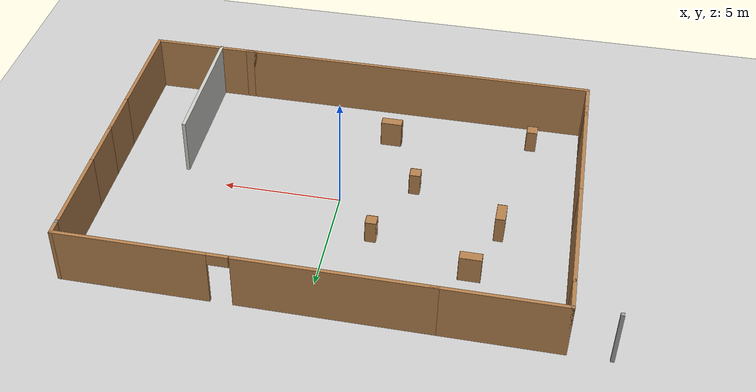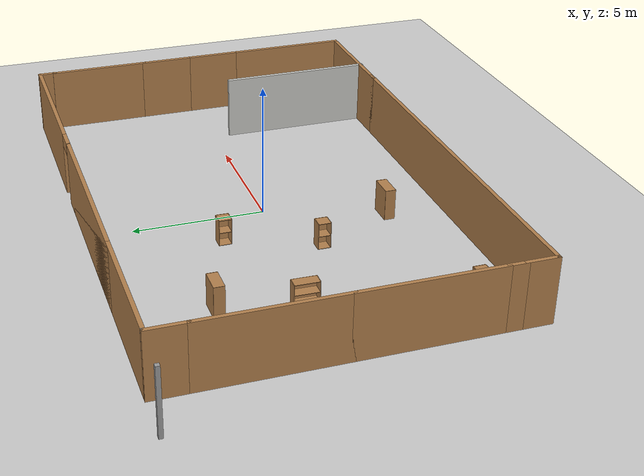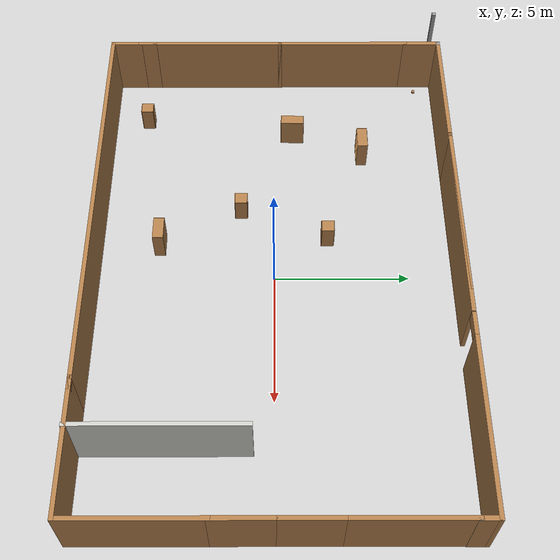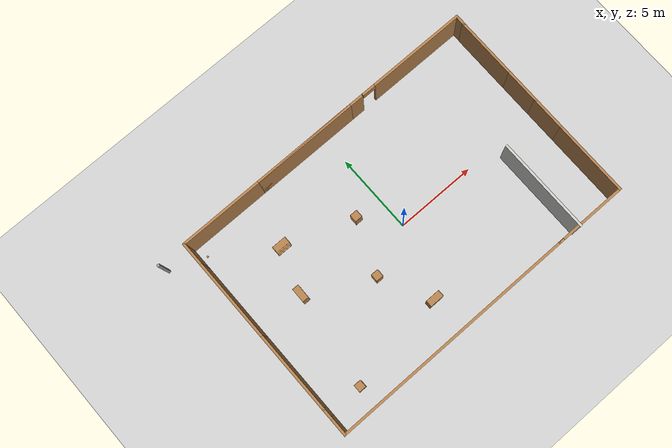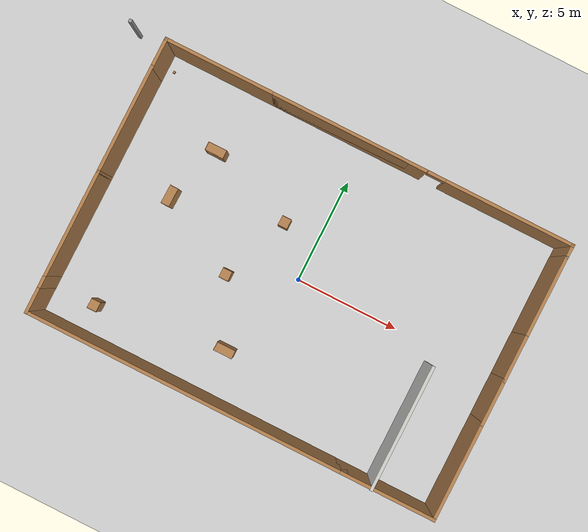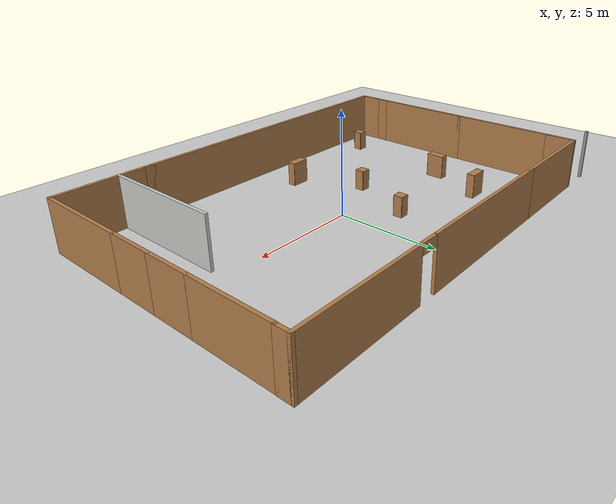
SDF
<sdf version="1.7">
 <world name="default">
  <model name="ground_plane">
   <static>1</static>
   <link name="link">
    <collision name="collision">
     <geometry><plane><normal>0 0 1</normal><size>100 100</size></plane></geometry>
     <surface><friction><ode><mu>100</mu><mu2>50</mu2></ode></friction></surface>
    </collision>
    <visual name="visual">
     <cast_shadows>0</cast_shadows>
     <geometry><plane><normal>0 0 1</normal><size>100 100</size></plane></geometry>
     <material>
      <script><uri>file://media/materials/scripts/gazebo.material</uri><name>Gazebo/Grey</name></script>
     </material>
    </visual>
   </link>
  </model>
  <model name="new1">
   <pose>-0.837793 0.046142 0 0 -0 0</pose>
   <link name="Wall_0">
    <collision name="Wall_0_Collision">
     <geometry><box><size>5.25 0.15 2.5</size></box></geometry>
     <pose>0 0 1.25 0 -0 0</pose>
    </collision>
    <visual name="Wall_0_Visual">
     <pose>0 0 1.25 0 -0 0</pose>
     <geometry><box><size>5.25 0.15 2.5</size></box></geometry>
     <material>
      <script><uri>file://media/materials/scripts/gazebo.material</uri><name>Gazebo/Wood</name></script>
      <ambient>1 1 1 1</ambient>
     </material>
     <meta><layer>0</layer></meta>
    </visual>
    <pose>-8.985 -2.355 0 0 -0 -1.5708</pose>
   </link>
   <link name="Wall_12">
    <collision name="Wall_12_Collision">
     <geometry><box><size>4.75 0.15 2.5</size></box></geometry>
     <pose>0 0 1.25 0 -0 0</pose>
    </collision>
    <visual name="Wall_12_Visual">
     <pose>0 0 1.25 0 -0 0</pose>
     <geometry><box><size>4.75 0.15 2.5</size></box></geometry>
     <material>
      <script><uri>file://media/materials/scripts/gazebo.material</uri><name>Gazebo/Wood</name></script>
      <ambient>1 1 1 1</ambient>
     </material>
     <meta><layer>0</layer></meta>
    </visual>
    <pose>10.715 -4.305 0 0 -0 1.5708</pose>
   </link>
   <link name="Wall_14">
    <collision name="Wall_14_Collision">
     <geometry><box><size>2.25 0.15 2.5</size></box></geometry>
     <pose>0 0 1.25 0 -0 0</pose>
    </collision>
    <visual name="Wall_14_Visual">
     <pose>0 0 1.25 0 -0 0</pose>
     <geometry><box><size>2.25 0.15 2.5</size></box></geometry>
     <material>
      <script><uri>file://media/materials/scripts/gazebo.material</uri><name>Gazebo/Wood</name></script>
      <ambient>1 1 1 1</ambient>
     </material>
     <meta><layer>0</layer></meta>
    </visual>
    <pose>10.715 -0.955 0 0 -0 1.5708</pose>
   </link>
   <link name="Wall_16">
    <collision name="Wall_16_Collision">
     <geometry><box><size>2.25 0.15 2.5</size></box></geometry>
     <pose>0 0 1.25 0 -0 0</pose>
    </collision>
    <visual name="Wall_16_Visual">
     <pose>0 0 1.25 0 -0 0</pose>
     <geometry><box><size>2.25 0.15 2.5</size></box></geometry>
     <material>
      <script><uri>file://media/materials/scripts/gazebo.material</uri><name>Gazebo/Wood</name></script>
      <ambient>1 1 1 1</ambient>
     </material>
     <meta><layer>0</layer></meta>
    </visual>
    <pose>10.715 1.145 0 0 -0 1.5708</pose>
   </link>
   <link name="Wall_19">
    <collision name="Wall_19_Collision">
     <geometry><box><size>4 0.15 2.5</size></box></geometry>
     <pose>0 0 1.25 0 -0 0</pose>
    </collision>
    <visual name="Wall_19_Visual">
     <pose>0 0 1.25 0 -0 0</pose>
     <geometry><box><size>4 0.15 2.5</size></box></geometry>
     <material>
      <script><uri>file://media/materials/scripts/gazebo.material</uri><name>Gazebo/Wood</name></script>
      <ambient>1 1 1 1</ambient>
     </material>
     <meta><layer>0</layer></meta>
    </visual>
    <pose>10.715 4.12 0 0 -0 1.5708</pose>
   </link>
   <link name="Wall_2">
    <collision name="Wall_2_Collision">
     <geometry><box><size>0.75 0.15 2.5</size></box></geometry>
     <pose>0 0 1.25 0 -0 0</pose>
    </collision>
    <visual name="Wall_2_Visual">
     <pose>0 0 1.25 0 -0 0</pose>
     <geometry><box><size>0.75 0.15 2.5</size></box></geometry>
     <material>
      <script><uri>file://media/materials/scripts/gazebo.material</uri><name>Gazebo/Wood</name></script>
      <ambient>1 1 1 1</ambient>
     </material>
     <meta><layer>0</layer></meta>
    </visual>
    <pose>-8.985 -5.205 0 0 -0 -1.5708</pose>
   </link>
   <link name="Wall_20">
    <collision name="Wall_20_Collision">
     <geometry><box><size>0.16 0.15 2.5</size></box></geometry>
     <pose>0 0 1.25 0 -0 0</pose>
    </collision>
    <visual name="Wall_20_Visual">
     <pose>0 0 1.25 0 -0 0</pose>
     <geometry><box><size>0.16 0.15 2.5</size></box></geometry>
     <material>
      <script><uri>file://media/materials/scripts/gazebo.material</uri><name>Gazebo/Grey</name></script>
      <ambient>1 1 1 1</ambient>
     </material>
     <meta><layer>0</layer></meta>
    </visual>
    <pose>10.72 6.045 0 0 -0 0</pose>
   </link>
   <link name="Wall_21">
    <collision name="Wall_21_Collision">
     <geometry><box><size>0.75 0.15 2.5</size></box></geometry>
     <pose>0 0 1.25 0 -0 0</pose>
    </collision>
    <visual name="Wall_21_Visual">
     <pose>0 0 1.25 0 -0 0</pose>
     <geometry><box><size>0.75 0.15 2.5</size></box></geometry>
     <material>
      <script><uri>file://media/materials/scripts/gazebo.material</uri><name>Gazebo/Wood</name></script>
      <ambient>1 1 1 1</ambient>
     </material>
     <meta><layer>0</layer></meta>
    </visual>
    <pose>10.725 6.345 0 0 -0 1.5708</pose>
   </link>
   <link name="Wall_22">
    <pose>3.3 6.645 0 0 -0 3.14159</pose>
    <visual name="Wall_22_Visual_0">
     <pose>-4.3875 0 1.25 0 -0 0</pose>
     <geometry><box><size>6.225 0.15 2.5</size></box></geometry>
     <material>
      <script><uri>file://media/materials/scripts/gazebo.material</uri><name>Gazebo/Wood</name></script>
      <ambient>1 1 1 1</ambient>
     </material>
     <meta><layer>0</layer></meta>
    </visual>
    <collision name="Wall_22_Collision_0">
     <geometry><box><size>6.225 0.15 2.5</size></box></geometry>
     <pose>-4.3875 0 1.25 0 -0 0</pose>
    </collision>
    <visual name="Wall_22_Visual_1">
     <pose>3.5625 0 1.25 0 -0 0</pose>
     <geometry><box><size>7.875 0.15 2.5</size></box></geometry>
     <material>
      <script><uri>file://media/materials/scripts/gazebo.material</uri><name>Gazebo/Wood</name></script>
      <ambient>1 1 1 1</ambient>
     </material>
     <meta><layer>0</layer></meta>
    </visual>
    <collision name="Wall_22_Collision_1">
     <geometry><box><size>7.875 0.15 2.5</size></box></geometry>
     <pose>3.5625 0 1.25 0 -0 0</pose>
    </collision>
    <visual name="Wall_22_Visual_2">
     <pose>3.9925 0 1.25 0 -0 0</pose>
     <geometry><box><size>7.015 0.15 2.5</size></box></geometry>
     <material>
      <script><uri>file://media/materials/scripts/gazebo.material</uri><name>Gazebo/Wood</name></script>
      <ambient>1 1 1 1</ambient>
     </material>
     <meta><layer>0</layer></meta>
    </visual>
    <collision name="Wall_22_Collision_2">
     <geometry><box><size>7.015 0.15 2.5</size></box></geometry>
     <pose>3.9925 0 1.25 0 -0 0</pose>
    </collision>
    <visual name="Wall_22_Visual_3">
     <pose>-0.845 0 2.25 0 -0 0</pose>
     <geometry><box><size>0.86 0.15 0.5</size></box></geometry>
     <material>
      <script><uri>file://media/materials/scripts/gazebo.material</uri><name>Gazebo/Wood</name></script>
      <ambient>1 1 1 1</ambient>
     </material>
     <meta><layer>0</layer></meta>
    </visual>
    <collision name="Wall_22_Collision_3">
     <geometry><box><size>0.86 0.15 0.5</size></box></geometry>
     <pose>-0.845 0 2.25 0 -0 0</pose>
    </collision>
   </link>
   <link name="Wall_25">
    <collision name="Wall_25_Collision">
     <geometry><box><size>0.15 0.15 2.5</size></box></geometry>
     <pose>0 0 1.25 0 -0 0</pose>
    </collision>
    <visual name="Wall_25_Visual">
     <pose>0 0 1.25 0 -0 0</pose>
     <geometry><box><size>0.15 0.15 2.5</size></box></geometry>
     <material>
      <script><uri>file://media/materials/scripts/gazebo.material</uri><name>Gazebo/Grey</name></script>
      <ambient>1 1 1 1</ambient>
     </material>
     <meta><layer>0</layer></meta>
    </visual>
    <pose>-10.725 6.645 0 0 -0 0</pose>
   </link>
   <link name="Wall_27">
    <collision name="Wall_27_Collision">
     <geometry><box><size>5.25 0.15 2.5</size></box></geometry>
     <pose>0 0 1.25 0 -0 0</pose>
    </collision>
    <visual name="Wall_27_Visual">
     <pose>0 0 1.25 0 -0 0</pose>
     <geometry><box><size>5.25 0.15 2.5</size></box></geometry>
     <material>
      <script><uri>file://media/materials/scripts/gazebo.material</uri><name>Gazebo/Wood</name></script>
      <ambient>1 1 1 1</ambient>
     </material>
     <meta><layer>0</layer></meta>
    </visual>
    <pose>-8.985 2.745 0 0 -0 1.5708</pose>
   </link>
   <link name="Wall_3">
    <collision name="Wall_3_Collision">
     <geometry><box><size>1.25 0.15 2.5</size></box></geometry>
     <pose>0 0 1.25 0 -0 0</pose>
    </collision>
    <visual name="Wall_3_Visual">
     <pose>0 0 1.25 0 -0 0</pose>
     <geometry><box><size>1.25 0.15 2.5</size></box></geometry>
     <material>
      <script><uri>file://media/materials/scripts/gazebo.material</uri><name>Gazebo/Wood</name></script>
      <ambient>1 1 1 1</ambient>
     </material>
     <meta><layer>0</layer></meta>
    </visual>
    <pose>-8.985 -6.055 0 0 -0 -1.5708</pose>
   </link>
   <link name="Wall_32">
    <collision name="Wall_32_Collision">
     <geometry><box><size>1.5 0.15 2.5</size></box></geometry>
     <pose>0 0 1.25 0 -0 0</pose>
    </collision>
    <visual name="Wall_32_Visual">
     <pose>0 0 1.25 0 -0 0</pose>
     <geometry><box><size>1.5 0.15 2.5</size></box></geometry>
     <material>
      <script><uri>file://media/materials/scripts/gazebo.material</uri><name>Gazebo/Wood</name></script>
      <ambient>1 1 1 1</ambient>
     </material>
     <meta><layer>0</layer></meta>
    </visual>
    <pose>-8.985 5.97 0 0 -0 1.5708</pose>
   </link>
   <link name="Wall_33">
    <collision name="Wall_33_Collision">
     <geometry><box><size>0.16 0.15 2.5</size></box></geometry>
     <pose>0 0 1.25 0 -0 0</pose>
    </collision>
    <visual name="Wall_33_Visual">
     <pose>0 0 1.25 0 -0 0</pose>
     <geometry><box><size>0.16 0.15 2.5</size></box></geometry>
     <material>
      <script><uri>file://media/materials/scripts/gazebo.material</uri><name>Gazebo/Grey</name></script>
      <ambient>1 1 1 1</ambient>
     </material>
     <meta><layer>0</layer></meta>
    </visual>
    <pose>-8.98 6.645 0 0 -0 0</pose>
   </link>
   <link name="Wall_37">
    <collision name="Wall_37_Collision">
     <geometry><box><size>5.25 0.15 2.5</size></box></geometry>
     <pose>0 0 1.25 0 -0 0</pose>
    </collision>
    <visual name="Wall_37_Visual">
     <pose>0 0 1.25 0 -0 0</pose>
     <geometry><box><size>5.25 0.15 2.5</size></box></geometry>
     <material>
      <script><uri>file://media/materials/scripts/gazebo.material</uri><name>Gazebo/Wood</name></script>
      <ambient>1 1 1 1</ambient>
     </material>
     <meta><layer>0</layer></meta>
    </visual>
    <pose>-6.435 6.645 0 0 -0 0</pose>
   </link>
   <link name="Wall_4">
    <collision name="Wall_4_Collision">
     <geometry><box><size>15.25 0.15 2.5</size></box></geometry>
     <pose>0 0 1.25 0 -0 0</pose>
    </collision>
    <visual name="Wall_4_Visual">
     <pose>0 0 1.25 0 -0 0</pose>
     <geometry><box><size>15.25 0.15 2.5</size></box></geometry>
     <material>
      <script><uri>file://media/materials/scripts/gazebo.material</uri><name>Gazebo/Wood</name></script>
      <ambient>1 1 1 1</ambient>
     </material>
     <meta><layer>0</layer></meta>
    </visual>
    <pose>-1.435 -6.605 0 0 -0 0</pose>
   </link>
   <link name="Wall_44">
    <collision name="Wall_44_Collision">
     <geometry><box><size>6 0.15 2.5</size></box></geometry>
     <pose>0 0 1.25 0 -0 0</pose>
    </collision>
    <visual name="Wall_44_Visual">
     <pose>0 0 1.25 0 -0 0</pose>
     <geometry><box><size>6 0.15 2.5</size></box></geometry>
     <material>
      <script><uri>file://media/materials/scripts/gazebo.material</uri><name>Gazebo/CeilingTiled</name></script>
      <ambient>1 1 1 1</ambient>
     </material>
     <meta><layer>0</layer></meta>
    </visual>
    <pose>7.735 -3.72 0 0 -0 1.5708</pose>
   </link>
   <link name="Wall_5">
    <collision name="Wall_5_Collision">
     <geometry><box><size>0.5 0.15 2.5</size></box></geometry>
     <pose>0 0 1.25 0 -0 0</pose>
    </collision>
    <visual name="Wall_5_Visual">
     <pose>0 0 1.25 0 -0 0</pose>
     <geometry><box><size>0.5 0.15 2.5</size></box></geometry>
     <material>
      <script><uri>file://media/materials/scripts/gazebo.material</uri><name>Gazebo/Wood</name></script>
      <ambient>1 1 1 1</ambient>
     </material>
     <meta><layer>0</layer></meta>
    </visual>
    <pose>6.29 -6.605 0 0 -0 0</pose>
   </link>
   <link name="Wall_7">
    <collision name="Wall_7_Collision">
     <geometry><box><size>4.75 0.15 2.5</size></box></geometry>
     <pose>0 0 1.25 0 -0 0</pose>
    </collision>
    <visual name="Wall_7_Visual">
     <pose>0 0 1.25 0 -0 0</pose>
     <geometry><box><size>4.75 0.15 2.5</size></box></geometry>
     <material>
      <script><uri>file://media/materials/scripts/gazebo.material</uri><name>Gazebo/Wood</name></script>
      <ambient>1 1 1 1</ambient>
     </material>
     <meta><layer>0</layer></meta>
    </visual>
    <pose>8.415 -6.605 0 0 -0 0</pose>
   </link>
   <static>1</static>
  </model>
  <model name="bookshelf">
   <static>1</static>
   <link name="link">
    <inertial><mass>1</mass></inertial>
    <collision name="back">
     <pose>0 0.005 0.6 0 -0 0</pose>
     <geometry><box><size>0.9 0.01 1.2</size></box></geometry>
    </collision>
    <visual name="visual1">
     <pose>0 0.005 0.6 0 -0 0</pose>
     <geometry><box><size>0.9 0.01 1.2</size></box></geometry>
     <material>
      <script><uri>file://media/materials/scripts/gazebo.material</uri><name>Gazebo/Wood</name></script>
     </material>
    </visual>
    <collision name="left_side">
     <pose>0.45 -0.195 0.6 0 -0 0</pose>
     <geometry><box><size>0.02 0.4 1.2</size></box></geometry>
    </collision>
    <visual name="visual2">
     <pose>0.45 -0.195 0.6 0 -0 0</pose>
     <geometry><box><size>0.02 0.4 1.2</size></box></geometry>
     <material>
      <script><uri>file://media/materials/scripts/gazebo.material</uri><name>Gazebo/Wood</name></script>
     </material>
    </visual>
    <collision name="right_side">
     <pose>-0.45 -0.195 0.6 0 -0 0</pose>
     <geometry><box><size>0.02 0.4 1.2</size></box></geometry>
    </collision>
    <visual name="visual3">
     <pose>-0.45 -0.195 0.6 0 -0 0</pose>
     <geometry><box><size>0.02 0.4 1.2</size></box></geometry>
     <material>
      <script><uri>file://media/materials/scripts/gazebo.material</uri><name>Gazebo/Wood</name></script>
     </material>
    </visual>
    <collision name="bottom">
     <pose>0 -0.195 0.03 0 -0 0</pose>
     <geometry><box><size>0.88 0.4 0.06</size></box></geometry>
    </collision>
    <visual name="visual4">
     <pose>0 -0.195 0.03 0 -0 0</pose>
     <geometry><box><size>0.88 0.4 0.06</size></box></geometry>
     <material>
      <script><uri>file://media/materials/scripts/gazebo.material</uri><name>Gazebo/Wood</name></script>
     </material>
    </visual>
    <collision name="top">
     <pose>0 -0.195 1.19 0 -0 0</pose>
     <geometry><box><size>0.88 0.4 0.02</size></box></geometry>
    </collision>
    <visual name="visual5">
     <pose>0 -0.195 1.19 0 -0 0</pose>
     <geometry><box><size>0.88 0.4 0.02</size></box></geometry>
     <material>
      <script><uri>file://media/materials/scripts/gazebo.material</uri><name>Gazebo/Wood</name></script>
     </material>
    </visual>
    <collision name="low_shelf">
     <pose>0 -0.195 0.43 0 -0 0</pose>
     <geometry><box><size>0.88 0.4 0.02</size></box></geometry>
    </collision>
    <visual name="visual6">
     <pose>0 -0.195 0.43 0 -0 0</pose>
     <geometry><box><size>0.88 0.4 0.02</size></box></geometry>
     <material>
      <script><uri>file://media/materials/scripts/gazebo.material</uri><name>Gazebo/Wood</name></script>
     </material>
    </visual>
    <collision name="high_shelf">
     <pose>0 -0.195 0.8 0 -0 0</pose>
     <geometry><box><size>0.88 0.4 0.02</size></box></geometry>
    </collision>
    <visual name="visual7">
     <pose>0 -0.195 0.8 0 -0 0</pose>
     <geometry><box><size>0.88 0.4 0.02</size></box></geometry>
     <material>
      <script><uri>file://media/materials/scripts/gazebo.material</uri><name>Gazebo/Wood</name></script>
     </material>
    </visual>
   </link>
   <pose>-5.91249 3.68913 0 0 -0 0</pose>
  </model>
  <model name="bookshelf_clone_1">
   <static>1</static>
   <link name="link">
    <inertial><mass>1</mass></inertial>
    <collision name="back">
     <pose>0 0.005 0.6 0 -0 0</pose>
     <geometry><box><size>0.9 0.01 1.2</size></box></geometry>
    </collision>
    <visual name="visual1">
     <pose>0 0.005 0.6 0 -0 0</pose>
     <geometry><box><size>0.9 0.01 1.2</size></box></geometry>
     <material>
      <script><uri>file://media/materials/scripts/gazebo.material</uri><name>Gazebo/Wood</name></script>
     </material>
    </visual>
    <collision name="left_side">
     <pose>0.45 -0.195 0.6 0 -0 0</pose>
     <geometry><box><size>0.02 0.4 1.2</size></box></geometry>
    </collision>
    <visual name="visual2">
     <pose>0.45 -0.195 0.6 0 -0 0</pose>
     <geometry><box><size>0.02 0.4 1.2</size></box></geometry>
     <material>
      <script><uri>file://media/materials/scripts/gazebo.material</uri><name>Gazebo/Wood</name></script>
     </material>
    </visual>
    <collision name="right_side">
     <pose>-0.45 -0.195 0.6 0 -0 0</pose>
     <geometry><box><size>0.02 0.4 1.2</size></box></geometry>
    </collision>
    <visual name="visual3">
     <pose>-0.45 -0.195 0.6 0 -0 0</pose>
     <geometry><box><size>0.02 0.4 1.2</size></box></geometry>
     <material>
      <script><uri>file://media/materials/scripts/gazebo.material</uri><name>Gazebo/Wood</name></script>
     </material>
    </visual>
    <collision name="bottom">
     <pose>0 -0.195 0.03 0 -0 0</pose>
     <geometry><box><size>0.88 0.4 0.06</size></box></geometry>
    </collision>
    <visual name="visual4">
     <pose>0 -0.195 0.03 0 -0 0</pose>
     <geometry><box><size>0.88 0.4 0.06</size></box></geometry>
     <material>
      <script><uri>file://media/materials/scripts/gazebo.material</uri><name>Gazebo/Wood</name></script>
     </material>
    </visual>
    <collision name="top">
     <pose>0 -0.195 1.19 0 -0 0</pose>
     <geometry><box><size>0.88 0.4 0.02</size></box></geometry>
    </collision>
    <visual name="visual5">
     <pose>0 -0.195 1.19 0 -0 0</pose>
     <geometry><box><size>0.88 0.4 0.02</size></box></geometry>
     <material>
      <script><uri>file://media/materials/scripts/gazebo.material</uri><name>Gazebo/Wood</name></script>
     </material>
    </visual>
    <collision name="low_shelf">
     <pose>0 -0.195 0.43 0 -0 0</pose>
     <geometry><box><size>0.88 0.4 0.02</size></box></geometry>
    </collision>
    <visual name="visual6">
     <pose>0 -0.195 0.43 0 -0 0</pose>
     <geometry><box><size>0.88 0.4 0.02</size></box></geometry>
     <material>
      <script><uri>file://media/materials/scripts/gazebo.material</uri><name>Gazebo/Wood</name></script>
     </material>
    </visual>
    <collision name="high_shelf">
     <pose>0 -0.195 0.8 0 -0 0</pose>
     <geometry><box><size>0.88 0.4 0.02</size></box></geometry>
    </collision>
    <visual name="visual7">
     <pose>0 -0.195 0.8 0 -0 0</pose>
     <geometry><box><size>0.88 0.4 0.02</size></box></geometry>
     <material>
      <script><uri>file://media/materials/scripts/gazebo.material</uri><name>Gazebo/Wood</name></script>
     </material>
    </visual>
   </link>
   <pose>-1.5109 -4.1059 0 0 -0 0</pose>
  </model>
  <model name="cabinet">
   <static>1</static>
   <link name="cabinet_bottom_plate">
    <inertial>
     <pose>0 0 -1 0 -0 0</pose>
     <inertia><ixx>2.05</ixx><ixy>0</ixy><ixz>0</ixz><iyy>2.05</iyy><iyz>0</iyz><izz>2.05</izz></inertia>
     <mass>25</mass>
    </inertial>
    <collision name="cabinet_bottom_plate_geom">
     <pose>0 0 0.01 0 -0 0</pose>
     <geometry><box><size>0.45 0.45 0.02</size></box></geometry>
    </collision>
    <visual name="cabinet_bottom_plate_geom_visual">
     <pose>0 0 0.01 0 -0 0</pose>
     <geometry><box><size>0.45 0.45 0.02</size></box></geometry>
     <material>
      <script><uri>file://media/materials/scripts/gazebo.material</uri><name>Gazebo/Wood</name></script>
     </material>
    </visual>
    <collision name="cabinet_bottom_plate_geom_cabinet_back_plate">
     <pose>0.235 0 0.51 0 -0 0</pose>
     <geometry><box><size>0.02 0.45 1.02</size></box></geometry>
    </collision>
    <visual name="cabinet_bottom_plate_geom_cabinet_back_plate_visual">
     <pose>0.235 0 0.51 0 -0 0</pose>
     <geometry><box><size>0.02 0.45 1.02</size></box></geometry>
     <material>
      <script><uri>file://media/materials/scripts/gazebo.material</uri><name>Gazebo/Wood</name></script>
     </material>
    </visual>
    <collision name="cabinet_bottom_plate_geom_cabinet_left_plate">
     <pose>0 0.235 0.51 0 -0 0</pose>
     <geometry><box><size>0.45 0.02 1.02</size></box></geometry>
    </collision>
    <visual name="cabinet_bottom_plate_geom_cabinet_left_plate_visual">
     <pose>0 0.235 0.51 0 -0 0</pose>
     <geometry><box><size>0.45 0.02 1.02</size></box></geometry>
     <material>
      <script><uri>file://media/materials/scripts/gazebo.material</uri><name>Gazebo/Wood</name></script>
     </material>
    </visual>
    <collision name="cabinet_bottom_plate_geom_cabinet_middle_plate">
     <pose>0 0 0.51 0 -0 0</pose>
     <geometry><box><size>0.45 0.45 0.02</size></box></geometry>
    </collision>
    <visual name="cabinet_bottom_plate_geom_cabinet_middle_plate_visual">
     <pose>0 0 0.51 0 -0 0</pose>
     <geometry><box><size>0.45 0.45 0.02</size></box></geometry>
     <material>
      <script><uri>file://media/materials/scripts/gazebo.material</uri><name>Gazebo/Wood</name></script>
     </material>
    </visual>
    <collision name="cabinet_bottom_plate_geom_cabinet_right_plate">
     <pose>0 -0.235 0.51 0 -0 0</pose>
     <geometry><box><size>0.45 0.02 1.02</size></box></geometry>
    </collision>
    <visual name="cabinet_bottom_plate_geom_cabinet_right_plate_visual">
     <pose>0 -0.235 0.51 0 -0 0</pose>
     <geometry><box><size>0.45 0.02 1.02</size></box></geometry>
     <material>
      <script><uri>file://media/materials/scripts/gazebo.material</uri><name>Gazebo/Wood</name></script>
     </material>
    </visual>
    <collision name="cabinet_bottom_plate_geom_cabinet_top_plate">
     <pose>0 0 1.01 0 -0 0</pose>
     <geometry><box><size>0.45 0.45 0.02</size></box></geometry>
    </collision>
    <visual name="cabinet_bottom_plate_geom_cabinet_top_plate_visual">
     <pose>0 0 1.01 0 -0 0</pose>
     <geometry><box><size>0.45 0.45 0.02</size></box></geometry>
     <material>
      <script><uri>file://media/materials/scripts/gazebo.material</uri><name>Gazebo/Wood</name></script>
     </material>
    </visual>
   </link>
   <pose>-3.02863 -1.26093 0 0 -0 0</pose>
  </model>
  <model name="cabinet_clone_1">
   <static>1</static>
   <link name="cabinet_bottom_plate">
    <inertial>
     <pose>0 0 -1 0 -0 0</pose>
     <inertia><ixx>2.05</ixx><ixy>0</ixy><ixz>0</ixz><iyy>2.05</iyy><iyz>0</iyz><izz>2.05</izz></inertia>
     <mass>25</mass>
    </inertial>
    <collision name="cabinet_bottom_plate_geom">
     <pose>0 0 0.01 0 -0 0</pose>
     <geometry><box><size>0.45 0.45 0.02</size></box></geometry>
    </collision>
    <visual name="cabinet_bottom_plate_geom_visual">
     <pose>0 0 0.01 0 -0 0</pose>
     <geometry><box><size>0.45 0.45 0.02</size></box></geometry>
     <material>
      <script><uri>file://media/materials/scripts/gazebo.material</uri><name>Gazebo/Wood</name></script>
     </material>
    </visual>
    <collision name="cabinet_bottom_plate_geom_cabinet_back_plate">
     <pose>0.235 0 0.51 0 -0 0</pose>
     <geometry><box><size>0.02 0.45 1.02</size></box></geometry>
    </collision>
    <visual name="cabinet_bottom_plate_geom_cabinet_back_plate_visual">
     <pose>0.235 0 0.51 0 -0 0</pose>
     <geometry><box><size>0.02 0.45 1.02</size></box></geometry>
     <material>
      <script><uri>file://media/materials/scripts/gazebo.material</uri><name>Gazebo/Wood</name></script>
     </material>
    </visual>
    <collision name="cabinet_bottom_plate_geom_cabinet_left_plate">
     <pose>0 0.235 0.51 0 -0 0</pose>
     <geometry><box><size>0.45 0.02 1.02</size></box></geometry>
    </collision>
    <visual name="cabinet_bottom_plate_geom_cabinet_left_plate_visual">
     <pose>0 0.235 0.51 0 -0 0</pose>
     <geometry><box><size>0.45 0.02 1.02</size></box></geometry>
     <material>
      <script><uri>file://media/materials/scripts/gazebo.material</uri><name>Gazebo/Wood</name></script>
     </material>
    </visual>
    <collision name="cabinet_bottom_plate_geom_cabinet_middle_plate">
     <pose>0 0 0.51 0 -0 0</pose>
     <geometry><box><size>0.45 0.45 0.02</size></box></geometry>
    </collision>
    <visual name="cabinet_bottom_plate_geom_cabinet_middle_plate_visual">
     <pose>0 0 0.51 0 -0 0</pose>
     <geometry><box><size>0.45 0.45 0.02</size></box></geometry>
     <material>
      <script><uri>file://media/materials/scripts/gazebo.material</uri><name>Gazebo/Wood</name></script>
     </material>
    </visual>
    <collision name="cabinet_bottom_plate_geom_cabinet_right_plate">
     <pose>0 -0.235 0.51 0 -0 0</pose>
     <geometry><box><size>0.45 0.02 1.02</size></box></geometry>
    </collision>
    <visual name="cabinet_bottom_plate_geom_cabinet_right_plate_visual">
     <pose>0 -0.235 0.51 0 -0 0</pose>
     <geometry><box><size>0.45 0.02 1.02</size></box></geometry>
     <material>
      <script><uri>file://media/materials/scripts/gazebo.material</uri><name>Gazebo/Wood</name></script>
     </material>
    </visual>
    <collision name="cabinet_bottom_plate_geom_cabinet_top_plate">
     <pose>0 0 1.01 0 -0 0</pose>
     <geometry><box><size>0.45 0.45 0.02</size></box></geometry>
    </collision>
    <visual name="cabinet_bottom_plate_geom_cabinet_top_plate_visual">
     <pose>0 0 1.01 0 -0 0</pose>
     <geometry><box><size>0.45 0.45 0.02</size></box></geometry>
     <material>
      <script><uri>file://media/materials/scripts/gazebo.material</uri><name>Gazebo/Wood</name></script>
     </material>
    </visual>
   </link>
   <pose>-1.7238 2.01899 0 0 -0 0</pose>
  </model>
  <model name="wood_cube_10cm">
   <link name="link">
    <pose>0 0 0.05 0 -0 0</pose>
    <inertial>
     <mass>0.5167</mass>
     <inertia>
      <ixx>0.000861167</ixx>
      <ixy>0</ixy>
      <ixz>0</ixz>
      <iyy>0.000861167</iyy>
      <iyz>0</iyz>
      <izz>0.000861167</izz>
     </inertia>
    </inertial>
    <collision name="collision">
     <geometry><box><size>0.1 0.1 0.1</size></box></geometry>
     <surface>
      <contact>
       <poissons_ratio>0.347</poissons_ratio>
       <elastic_modulus>8.8e+09</elastic_modulus>
       <ode><kp>100000</kp><kd>100</kd><max_vel>100</max_vel><min_depth>0.001</min_depth></ode>
      </contact>
      <friction>
       <torsional>
        <coefficient>1</coefficient>
        <use_patch_radius>0</use_patch_radius>
        <surface_radius>0.01</surface_radius>
       </torsional>
      </friction>
     </surface>
    </collision>
    <visual name="visual">
     <geometry><box><size>0.1 0.1 0.1</size></box></geometry>
     <material>
      <script><uri>file://media/materials/scripts/gazebo.material</uri><name>Gazebo/Wood</name></script>
     </material>
    </visual>
   </link>
   <pose>-9.42297 5.91958 -0.001013 0 -0 0</pose>
  </model>
  <model name="cabinet_clone_clone_clone">
   <static>1</static>
   <link name="cabinet_bottom_plate">
    <inertial>
     <pose>0 0 -1 0 -0 0</pose>
     <inertia><ixx>2.05</ixx><ixy>0</ixy><ixz>0</ixz><iyy>2.05</iyy><iyz>0</iyz><izz>2.05</izz></inertia>
     <mass>25</mass>
    </inertial>
    <collision name="cabinet_bottom_plate_geom">
     <pose>0 0 0.01 0 -0 0</pose>
     <geometry><box><size>0.45 0.45 0.02</size></box></geometry>
    </collision>
    <visual name="cabinet_bottom_plate_geom_visual">
     <pose>0 0 0.01 0 -0 0</pose>
     <geometry><box><size>0.45 0.45 0.02</size></box></geometry>
     <material>
      <script><uri>file://media/materials/scripts/gazebo.material</uri><name>Gazebo/Wood</name></script>
     </material>
    </visual>
    <collision name="cabinet_bottom_plate_geom_cabinet_back_plate">
     <pose>0.235 0 0.51 0 -0 0</pose>
     <geometry><box><size>0.02 0.45 1.02</size></box></geometry>
    </collision>
    <visual name="cabinet_bottom_plate_geom_cabinet_back_plate_visual">
     <pose>0.235 0 0.51 0 -0 0</pose>
     <geometry><box><size>0.02 0.45 1.02</size></box></geometry>
     <material>
      <script><uri>file://media/materials/scripts/gazebo.material</uri><name>Gazebo/Wood</name></script>
     </material>
    </visual>
    <collision name="cabinet_bottom_plate_geom_cabinet_left_plate">
     <pose>0 0.235 0.51 0 -0 0</pose>
     <geometry><box><size>0.45 0.02 1.02</size></box></geometry>
    </collision>
    <visual name="cabinet_bottom_plate_geom_cabinet_left_plate_visual">
     <pose>0 0.235 0.51 0 -0 0</pose>
     <geometry><box><size>0.45 0.02 1.02</size></box></geometry>
     <material>
      <script><uri>file://media/materials/scripts/gazebo.material</uri><name>Gazebo/Wood</name></script>
     </material>
    </visual>
    <collision name="cabinet_bottom_plate_geom_cabinet_middle_plate">
     <pose>0 0 0.51 0 -0 0</pose>
     <geometry><box><size>0.45 0.45 0.02</size></box></geometry>
    </collision>
    <visual name="cabinet_bottom_plate_geom_cabinet_middle_plate_visual">
     <pose>0 0 0.51 0 -0 0</pose>
     <geometry><box><size>0.45 0.45 0.02</size></box></geometry>
     <material>
      <script><uri>file://media/materials/scripts/gazebo.material</uri><name>Gazebo/Wood</name></script>
     </material>
    </visual>
    <collision name="cabinet_bottom_plate_geom_cabinet_right_plate">
     <pose>0 -0.235 0.51 0 -0 0</pose>
     <geometry><box><size>0.45 0.02 1.02</size></box></geometry>
    </collision>
    <visual name="cabinet_bottom_plate_geom_cabinet_right_plate_visual">
     <pose>0 -0.235 0.51 0 -0 0</pose>
     <geometry><box><size>0.45 0.02 1.02</size></box></geometry>
     <material>
      <script><uri>file://media/materials/scripts/gazebo.material</uri><name>Gazebo/Wood</name></script>
     </material>
    </visual>
    <collision name="cabinet_bottom_plate_geom_cabinet_top_plate">
     <pose>0 0 1.01 0 -0 0</pose>
     <geometry><box><size>0.45 0.45 0.02</size></box></geometry>
    </collision>
    <visual name="cabinet_bottom_plate_geom_cabinet_top_plate_visual">
     <pose>0 0 1.01 0 -0 0</pose>
     <geometry><box><size>0.45 0.45 0.02</size></box></geometry>
     <material>
      <script><uri>file://media/materials/scripts/gazebo.material</uri><name>Gazebo/Wood</name></script>
     </material>
    </visual>
   </link>
   <pose>-7.65918 -5.15986 0 0 -0 0</pose>
  </model>
  <model name="bookshelf_clone_clone">
   <static>1</static>
   <link name="link">
    <inertial><mass>1</mass></inertial>
    <collision name="back">
     <pose>0 0.005 0.6 0 -0 0</pose>
     <geometry><box><size>0.9 0.01 1.2</size></box></geometry>
    </collision>
    <visual name="visual1">
     <pose>0 0.005 0.6 0 -0 0</pose>
     <geometry><box><size>0.9 0.01 1.2</size></box></geometry>
     <material>
      <script><uri>file://media/materials/scripts/gazebo.material</uri><name>Gazebo/Wood</name></script>
     </material>
    </visual>
    <collision name="left_side">
     <pose>0.45 -0.195 0.6 0 -0 0</pose>
     <geometry><box><size>0.02 0.4 1.2</size></box></geometry>
    </collision>
    <visual name="visual2">
     <pose>0.45 -0.195 0.6 0 -0 0</pose>
     <geometry><box><size>0.02 0.4 1.2</size></box></geometry>
     <material>
      <script><uri>file://media/materials/scripts/gazebo.material</uri><name>Gazebo/Wood</name></script>
     </material>
    </visual>
    <collision name="right_side">
     <pose>-0.45 -0.195 0.6 0 -0 0</pose>
     <geometry><box><size>0.02 0.4 1.2</size></box></geometry>
    </collision>
    <visual name="visual3">
     <pose>-0.45 -0.195 0.6 0 -0 0</pose>
     <geometry><box><size>0.02 0.4 1.2</size></box></geometry>
     <material>
      <script><uri>file://media/materials/scripts/gazebo.material</uri><name>Gazebo/Wood</name></script>
     </material>
    </visual>
    <collision name="bottom">
     <pose>0 -0.195 0.03 0 -0 0</pose>
     <geometry><box><size>0.88 0.4 0.06</size></box></geometry>
    </collision>
    <visual name="visual4">
     <pose>0 -0.195 0.03 0 -0 0</pose>
     <geometry><box><size>0.88 0.4 0.06</size></box></geometry>
     <material>
      <script><uri>file://media/materials/scripts/gazebo.material</uri><name>Gazebo/Wood</name></script>
     </material>
    </visual>
    <collision name="top">
     <pose>0 -0.195 1.19 0 -0 0</pose>
     <geometry><box><size>0.88 0.4 0.02</size></box></geometry>
    </collision>
    <visual name="visual5">
     <pose>0 -0.195 1.19 0 -0 0</pose>
     <geometry><box><size>0.88 0.4 0.02</size></box></geometry>
     <material>
      <script><uri>file://media/materials/scripts/gazebo.material</uri><name>Gazebo/Wood</name></script>
     </material>
    </visual>
    <collision name="low_shelf">
     <pose>0 -0.195 0.43 0 -0 0</pose>
     <geometry><box><size>0.88 0.4 0.02</size></box></geometry>
    </collision>
    <visual name="visual6">
     <pose>0 -0.195 0.43 0 -0 0</pose>
     <geometry><box><size>0.88 0.4 0.02</size></box></geometry>
     <material>
      <script><uri>file://media/materials/scripts/gazebo.material</uri><name>Gazebo/Wood</name></script>
     </material>
    </visual>
    <collision name="high_shelf">
     <pose>0 -0.195 0.8 0 -0 0</pose>
     <geometry><box><size>0.88 0.4 0.02</size></box></geometry>
    </collision>
    <visual name="visual7">
     <pose>0 -0.195 0.8 0 -0 0</pose>
     <geometry><box><size>0.88 0.4 0.02</size></box></geometry>
     <material>
      <script><uri>file://media/materials/scripts/gazebo.material</uri><name>Gazebo/Wood</name></script>
     </material>
    </visual>
   </link>
   <pose>-6.63915 0.730356 0 0 0 -1.59228</pose>
  </model>
 </world>
</sdf>
